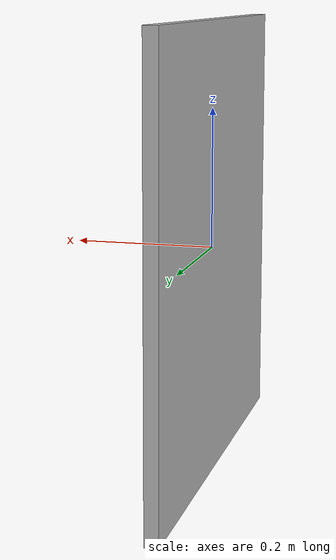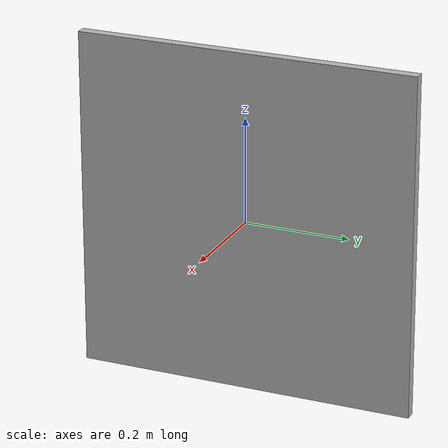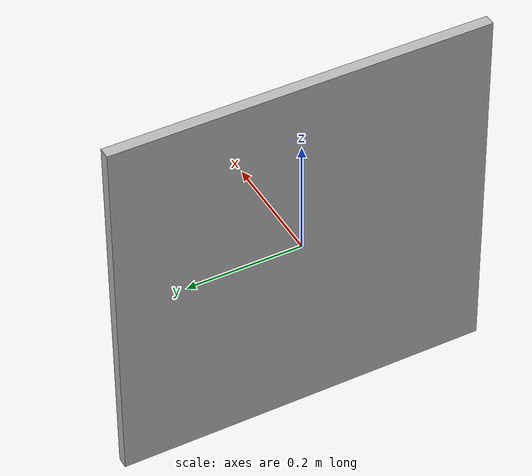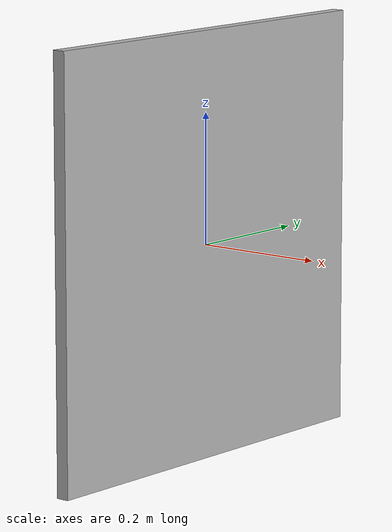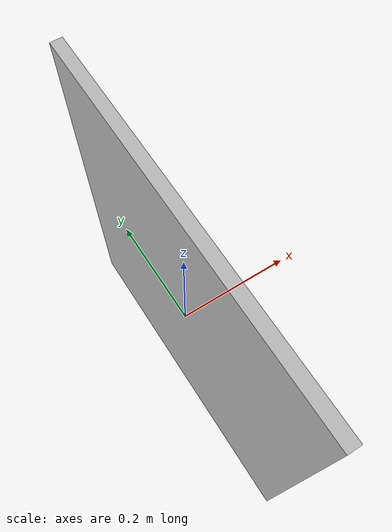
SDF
<?xml version="1.0" ?>
<sdf version="1.9">
  <model name="aprilgrid_6x6">
    <static>true</static>

    <link name="panel_link">
      <pose>0 0 0 0 0 0</pose>

      <visual name="panel_visual">
        <geometry>
          <box>
            <size>0.02 0.648 0.648</size>
          </box>
        </geometry>
        <material>
          <pbr>
            <metal>
              <albedo_map>model://aprilgrid_6x6/materials/textures/aprilgrid_6x6.png</albedo_map>
              <emissive_map>model://aprilgrid_6x6/materials/textures/aprilgrid_6x6.png</emissive_map>
              <roughness>0.9</roughness>
              <metalness>0.0</metalness>
            </metal>
          </pbr>
        </material>
      </visual>

      <collision name="panel_collision">
        <geometry>
          <box>
            <size>0.02 0.648 0.648</size>
          </box>
        </geometry>
      </collision>

      <inertial>
        <mass>1.0</mass>
        <inertia>
          <ixx>0.01</ixx>
          <iyy>0.01</iyy>
          <izz>0.01</izz>
          <ixy>0</ixy>
          <ixz>0</ixz>
          <iyz>0</iyz>
        </inertia>
      </inertial>
    </link>
  </model>
</sdf>
